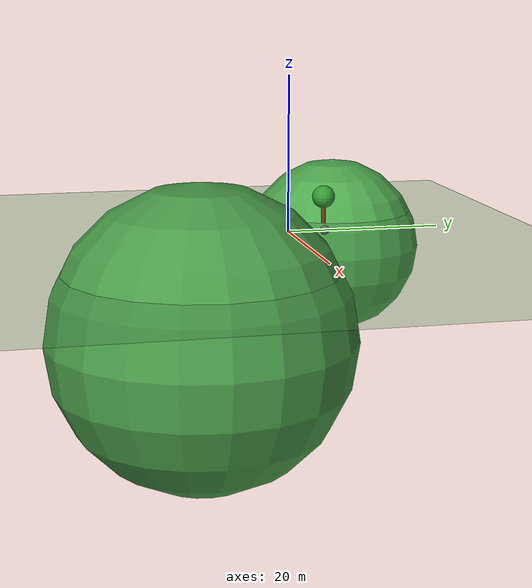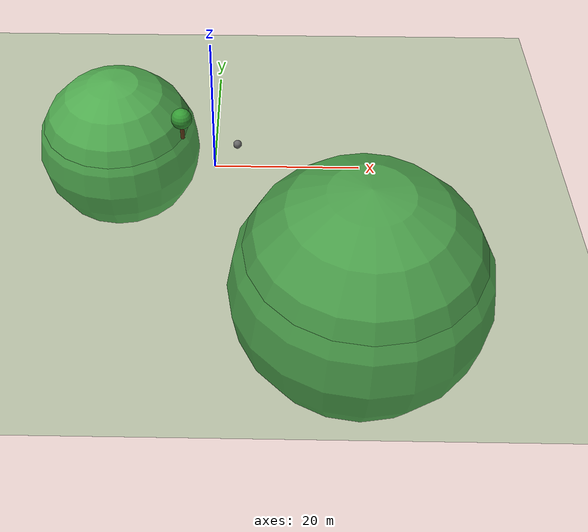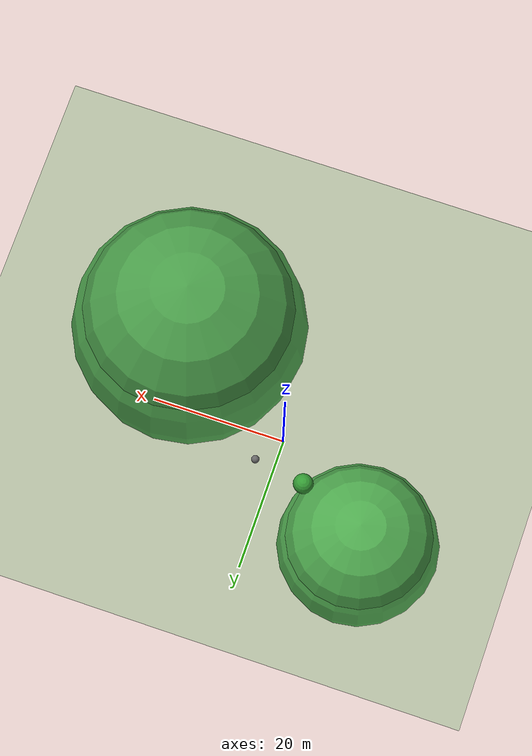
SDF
<?xml version="1.0" ?>
<sdf version="1.6">
  <world name="offline_realistic_world">

    <!-- Stable Physics -->
    <physics type="ode">
      <gravity>0 0 -9.8</gravity>
      <max_step_size>0.001</max_step_size>
      <real_time_update_rate>1000</real_time_update_rate>
      <ode>
        <solver>
          <type>quick</type>
          <iters>100</iters>
        </solver>
      </ode>
    </physics>

    <scene>
      <ambient>0.6 0.6 0.6 1</ambient>
      <background>0.6 0.8 1 1</background>
      <shadows>true</shadows>
    </scene>

    <include>
      <uri>model://sun</uri>
    </include>

    <!-- Large Grass Field -->
    <model name="grass_field">
      <static>true</static>
      <link name="link">
        <collision name="collision">
          <geometry>
            <plane>
              <normal>0 0 1</normal>
              <size>200 200</size>
            </plane>
          </geometry>
        </collision>
        <visual name="visual">
          <geometry>
            <plane>
              <normal>0 0 1</normal>
              <size>200 200</size>
            </plane>
          </geometry>
          <material>
            <ambient>0.25 0.55 0.25 1</ambient>
            <diffuse>0.3 0.6 0.3 1</diffuse>
          </material>
        </visual>
      </link>
    </model>

    <!-- Rolling Hill 1 (Visual Only) -->
    <model name="hill1">
      <static>true</static>
      <pose>-15 10 -5 0 0 0</pose>
      <link name="link">
        <visual name="hill_visual">
          <geometry>
            <sphere>
              <radius>12</radius>
            </sphere>
          </geometry>
          <material>
            <ambient>0.3 0.65 0.3 1</ambient>
          </material>
        </visual>
      </link>
    </model>

    <!-- Rolling Hill 2 -->
    <model name="hill2">
      <static>true</static>
      <pose>20 -15 -8 0 0 0</pose>
      <link name="link">
        <visual name="hill_visual">
          <geometry>
            <sphere>
              <radius>18</radius>
            </sphere>
          </geometry>
          <material>
            <ambient>0.28 0.6 0.28 1</ambient>
          </material>
        </visual>
      </link>
    </model>

    <!-- Rock Obstacles -->
    <model name="rock1">
      <static>true</static>
      <pose>3 4 0.6 0 0 0</pose>
      <link name="link">
        <collision name="collision">
          <geometry>
            <sphere>
              <radius>0.6</radius>
            </sphere>
          </geometry>
        </collision>
        <visual name="visual">
          <geometry>
            <sphere>
              <radius>0.6</radius>
            </sphere>
          </geometry>
          <material>
            <ambient>0.4 0.4 0.4 1</ambient>
          </material>
        </visual>
      </link>
    </model>

    <!-- Simple Tree -->
    <model name="tree1">
      <static>true</static>
      <pose>-5 6 0 0 0 0</pose>
      <link name="link">
        <!-- Trunk -->
        <visual name="trunk">
          <geometry>
            <cylinder>
              <radius>0.3</radius>
              <length>3</length>
            </cylinder>
          </geometry>
          <pose>0 0 1.5 0 0 0</pose>
          <material>
            <ambient>0.4 0.25 0.1 1</ambient>
          </material>
        </visual>
        <!-- Leaves -->
        <visual name="leaves">
          <geometry>
            <sphere>
              <radius>1.5</radius>
            </sphere>
          </geometry>
          <pose>0 0 3.5 0 0 0</pose>
          <material>
            <ambient>0.2 0.6 0.2 1</ambient>
          </material>
        </visual>
      </link>
    </model>

  </world>
</sdf>
